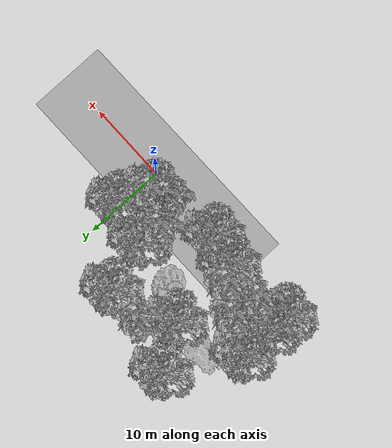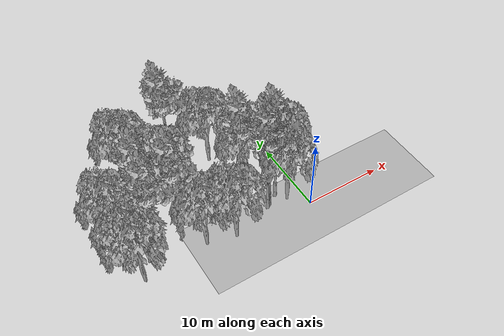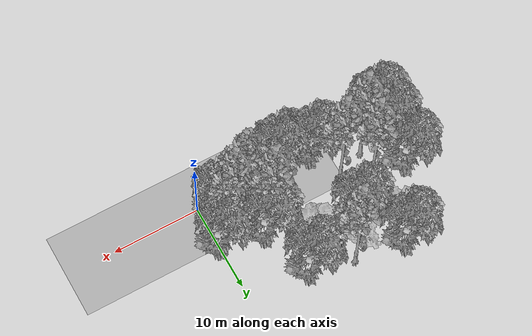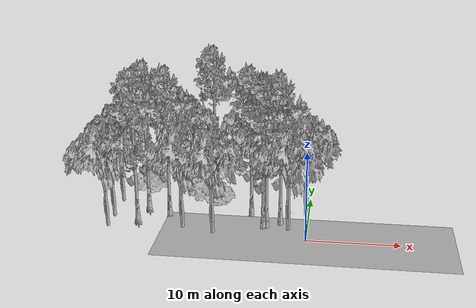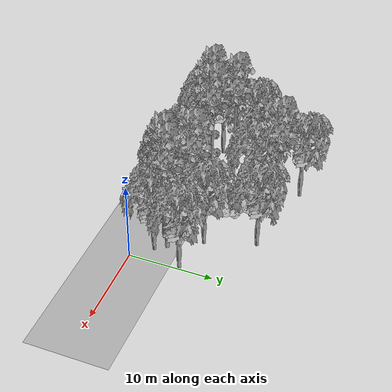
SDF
<sdf version="1.7">
 <world name="default">
  <model name="ground_plane">
   <static>1</static>
   <link name="link">
    <collision name="collision">
     <pose>-50 0 0 0 -0 0</pose>
     <geometry><plane><normal>0 0 1</normal><size>100 100</size></plane></geometry>
     <surface><contact><ode><min_depth>0.01</min_depth><max_vel>0</max_vel></ode></contact></surface>
    </collision>
    <visual name="grass">
     <cast_shadows>0</cast_shadows>
     <geometry>
      <mesh>
       <scale>0.5814285714285714 0.18142857142857144 0.1</scale>
       <uri>file://grass_plane/meshes/grass_plane.dae</uri>
      </mesh>
     </geometry>
    </visual>
   </link>
  </model>
  <model name="Tree 9">
   <static>1</static>
   <pose>-5.143246595416393 7.067504007709154 0 1.57079 -0 0</pose>
   <link name="link">
    <collision name="collision">
     <geometry><mesh><scale>3.5 5 3.5</scale><uri>model://tree_2/meshes/tree_2.obj</uri></mesh></geometry>
    </collision>
    <visual name="visual">
     <geometry><mesh><scale>3.5 5 3.5</scale><uri>model://tree_2/meshes/tree_2.obj</uri></mesh></geometry>
    </visual>
   </link>
  </model>
  <model name="Tree 10">
   <static>1</static>
   <pose>-15.46027357171912 4.023113460201788 0 1.57079 -0 0</pose>
   <link name="link">
    <collision name="collision">
     <geometry><mesh><scale>3.5 5 3.5</scale><uri>model://tree_9/meshes/tree_9.obj</uri></mesh></geometry>
    </collision>
    <visual name="visual">
     <geometry><mesh><scale>3.5 5 3.5</scale><uri>model://tree_9/meshes/tree_9.obj</uri></mesh></geometry>
    </visual>
   </link>
  </model>
  <model name="Tree 12">
   <static>1</static>
   <pose>-14.131242068738842 11.019451765315992 0 1.57079 -0 0</pose>
   <link name="link">
    <collision name="collision">
     <geometry><mesh><scale>4 2.5 4</scale><uri>model://tree_1/meshes/tree_1.obj</uri></mesh></geometry>
    </collision>
    <visual name="visual">
     <geometry><mesh><scale>4 2.5 4</scale><uri>model://tree_1/meshes/tree_1.obj</uri></mesh></geometry>
    </visual>
   </link>
  </model>
  <model name="Tree 23">
   <static>1</static>
   <pose>-2.088435421180897 2.185330463497394 0 1.57079 -0 0</pose>
   <link name="link">
    <collision name="collision">
     <geometry><mesh><scale>3.5 5 3.5</scale><uri>model://tree_2/meshes/tree_2.obj</uri></mesh></geometry>
    </collision>
    <visual name="visual">
     <geometry><mesh><scale>3.5 5 3.5</scale><uri>model://tree_2/meshes/tree_2.obj</uri></mesh></geometry>
    </visual>
   </link>
  </model>
  <model name="Tree 31">
   <static>1</static>
   <pose>-19.215518709218156 9.99422568321122 0 1.57079 -0 0</pose>
   <link name="link">
    <collision name="collision">
     <geometry><mesh><scale>3 2 3</scale><uri>model://tree_3/meshes/tree_3.obj</uri></mesh></geometry>
    </collision>
    <visual name="visual">
     <geometry><mesh><scale>3 2 3</scale><uri>model://tree_3/meshes/tree_3.obj</uri></mesh></geometry>
    </visual>
   </link>
  </model>
  <model name="Tree 48">
   <static>1</static>
   <pose>-2.9748167784761534 3.4079729483396974 0 1.57079 -0 0</pose>
   <link name="link">
    <collision name="collision">
     <geometry><mesh><scale>3.5 5 3.5</scale><uri>model://tree_9/meshes/tree_9.obj</uri></mesh></geometry>
    </collision>
    <visual name="visual">
     <geometry><mesh><scale>3.5 5 3.5</scale><uri>model://tree_9/meshes/tree_9.obj</uri></mesh></geometry>
    </visual>
   </link>
  </model>
  <model name="Tree 50">
   <static>1</static>
   <pose>-21.821226923713294 7.16896674432806 0 1.57079 -0 0</pose>
   <link name="link">
    <collision name="collision">
     <geometry><mesh><scale>3.5 5 3.5</scale><uri>model://tree_2/meshes/tree_2.obj</uri></mesh></geometry>
    </collision>
    <visual name="visual">
     <geometry><mesh><scale>3.5 5 3.5</scale><uri>model://tree_2/meshes/tree_2.obj</uri></mesh></geometry>
    </visual>
   </link>
  </model>
  <model name="Tree 54">
   <static>1</static>
   <pose>-18.30785985367051 5.831797996937862 0 1.57079 -0 0</pose>
   <link name="link">
    <collision name="collision">
     <geometry><mesh><scale>3.5 5 3.5</scale><uri>model://tree_9/meshes/tree_9.obj</uri></mesh></geometry>
    </collision>
    <visual name="visual">
     <geometry><mesh><scale>3.5 5 3.5</scale><uri>model://tree_9/meshes/tree_9.obj</uri></mesh></geometry>
    </visual>
   </link>
  </model>
  <model name="Tree 55">
   <static>1</static>
   <pose>-10.115335346622025 0.6797489572190187 0 1.57079 -0 0</pose>
   <link name="link">
    <collision name="collision">
     <geometry><mesh><scale>3.5 5 3.5</scale><uri>model://tree_2/meshes/tree_2.obj</uri></mesh></geometry>
    </collision>
    <visual name="visual">
     <geometry><mesh><scale>3.5 5 3.5</scale><uri>model://tree_2/meshes/tree_2.obj</uri></mesh></geometry>
    </visual>
   </link>
  </model>
  <model name="Tree 61">
   <static>1</static>
   <pose>-18.78324429591113 2.6452411074708664 0 1.57079 -0 0</pose>
   <link name="link">
    <collision name="collision">
     <geometry><mesh><scale>3.5 5 3.5</scale><uri>model://tree_9/meshes/tree_9.obj</uri></mesh></geometry>
    </collision>
    <visual name="visual">
     <geometry><mesh><scale>3.5 5 3.5</scale><uri>model://tree_9/meshes/tree_9.obj</uri></mesh></geometry>
    </visual>
   </link>
  </model>
  <model name="Tree 74">
   <static>1</static>
   <pose>-11.77840353780006 7.982875021702593 0 1.57079 -0 0</pose>
   <link name="link">
    <collision name="collision">
     <geometry><mesh><scale>3 2 3</scale><uri>model://tree_3/meshes/tree_3.obj</uri></mesh></geometry>
    </collision>
    <visual name="visual">
     <geometry><mesh><scale>3 2 3</scale><uri>model://tree_3/meshes/tree_3.obj</uri></mesh></geometry>
    </visual>
   </link>
  </model>
  <model name="Tree 75">
   <static>1</static>
   <pose>-21.71744420737747 3.268879900940238 0 1.57079 -0 0</pose>
   <link name="link">
    <collision name="collision">
     <geometry><mesh><scale>3.5 5 3.5</scale><uri>model://tree_2/meshes/tree_2.obj</uri></mesh></geometry>
    </collision>
    <visual name="visual">
     <geometry><mesh><scale>3.5 5 3.5</scale><uri>model://tree_2/meshes/tree_2.obj</uri></mesh></geometry>
    </visual>
   </link>
  </model>
  <model name="Tree 78">
   <static>1</static>
   <pose>-4.7421210719146245 2.2760373377823804 0 1.57079 -0 0</pose>
   <link name="link">
    <collision name="collision">
     <geometry><mesh><scale>3.5 5 3.5</scale><uri>model://tree_9/meshes/tree_9.obj</uri></mesh></geometry>
    </collision>
    <visual name="visual">
     <geometry><mesh><scale>3.5 5 3.5</scale><uri>model://tree_9/meshes/tree_9.obj</uri></mesh></geometry>
    </visual>
   </link>
  </model>
  <model name="Tree 80">
   <static>1</static>
   <pose>-13.595956363954969 1.55629923744862 0 1.57079 -0 0</pose>
   <link name="link">
    <collision name="collision">
     <geometry><mesh><scale>3.5 5 3.5</scale><uri>model://tree_2/meshes/tree_2.obj</uri></mesh></geometry>
    </collision>
    <visual name="visual">
     <geometry><mesh><scale>3.5 5 3.5</scale><uri>model://tree_2/meshes/tree_2.obj</uri></mesh></geometry>
    </visual>
   </link>
  </model>
  <model name="Tree 95">
   <static>1</static>
   <pose>-7.061503203735583 12.80749509954357 0 1.57079 -0 0</pose>
   <link name="link">
    <collision name="collision">
     <geometry><mesh><scale>3.5 5 3.5</scale><uri>model://tree_2/meshes/tree_2.obj</uri></mesh></geometry>
    </collision>
    <visual name="visual">
     <geometry><mesh><scale>3.5 5 3.5</scale><uri>model://tree_2/meshes/tree_2.obj</uri></mesh></geometry>
    </visual>
   </link>
  </model>
  <model name="Tree 103">
   <static>1</static>
   <pose>-6.384611293899532 5.269090776431952 0 1.57079 -0 0</pose>
   <link name="link">
    <collision name="collision">
     <geometry><mesh><scale>3.5 5 3.5</scale><uri>model://tree_9/meshes/tree_9.obj</uri></mesh></geometry>
    </collision>
    <visual name="visual">
     <geometry><mesh><scale>3.5 5 3.5</scale><uri>model://tree_9/meshes/tree_9.obj</uri></mesh></geometry>
    </visual>
   </link>
  </model>
  <model name="Tree 104">
   <static>1</static>
   <pose>-21.762864801579703 0.9053066287096101 0 1.57079 -0 0</pose>
   <link name="link">
    <collision name="collision">
     <geometry><mesh><scale>3.5 5 3.5</scale><uri>model://tree_2/meshes/tree_2.obj</uri></mesh></geometry>
    </collision>
    <visual name="visual">
     <geometry><mesh><scale>3.5 5 3.5</scale><uri>model://tree_2/meshes/tree_2.obj</uri></mesh></geometry>
    </visual>
   </link>
  </model>
  <model name="Tree 105">
   <static>1</static>
   <pose>-14.259181660217621 10.020996413009154 0 1.57079 -0 0</pose>
   <link name="link">
    <collision name="collision">
     <geometry><mesh><scale>3.5 5 3.5</scale><uri>model://tree_2/meshes/tree_2.obj</uri></mesh></geometry>
    </collision>
    <visual name="visual">
     <geometry><mesh><scale>3.5 5 3.5</scale><uri>model://tree_2/meshes/tree_2.obj</uri></mesh></geometry>
    </visual>
   </link>
  </model>
  <model name="Tree 128">
   <static>1</static>
   <pose>-17.232470501676687 14.830186635139327 0 1.57079 -0 0</pose>
   <link name="link">
    <collision name="collision">
     <geometry><mesh><scale>3.5 5 3.5</scale><uri>model://tree_2/meshes/tree_2.obj</uri></mesh></geometry>
    </collision>
    <visual name="visual">
     <geometry><mesh><scale>3.5 5 3.5</scale><uri>model://tree_2/meshes/tree_2.obj</uri></mesh></geometry>
    </visual>
   </link>
  </model>
  <model name="Tree 135">
   <static>1</static>
   <pose>-10.576448192593674 7.65397642112967 0 1.57079 -0 0</pose>
   <link name="link">
    <collision name="collision">
     <geometry><mesh><scale>4 2.5 4</scale><uri>model://tree_1/meshes/tree_1.obj</uri></mesh></geometry>
    </collision>
    <visual name="visual">
     <geometry><mesh><scale>4 2.5 4</scale><uri>model://tree_1/meshes/tree_1.obj</uri></mesh></geometry>
    </visual>
   </link>
  </model>
  <model name="Tree 150">
   <static>1</static>
   <pose>-11.862073788854069 13.303572772991714 0 1.57079 -0 0</pose>
   <link name="link">
    <collision name="collision">
     <geometry><mesh><scale>3.5 5 3.5</scale><uri>model://tree_9/meshes/tree_9.obj</uri></mesh></geometry>
    </collision>
    <visual name="visual">
     <geometry><mesh><scale>3.5 5 3.5</scale><uri>model://tree_9/meshes/tree_9.obj</uri></mesh></geometry>
    </visual>
   </link>
  </model>
  <model name="Tree 157">
   <static>1</static>
   <pose>-0.3933818354336083 5.950817330119836 0 1.57079 -0 0</pose>
   <link name="link">
    <collision name="collision">
     <geometry><mesh><scale>3.5 5 3.5</scale><uri>model://tree_2/meshes/tree_2.obj</uri></mesh></geometry>
    </collision>
    <visual name="visual">
     <geometry><mesh><scale>3.5 5 3.5</scale><uri>model://tree_2/meshes/tree_2.obj</uri></mesh></geometry>
    </visual>
   </link>
  </model>
  <model name="Tree 165">
   <static>1</static>
   <pose>-4.397275362734213 2.495006176137643 0 1.57079 -0 0</pose>
   <link name="link">
    <collision name="collision">
     <geometry><mesh><scale>3.5 5 3.5</scale><uri>model://tree_9/meshes/tree_9.obj</uri></mesh></geometry>
    </collision>
    <visual name="visual">
     <geometry><mesh><scale>3.5 5 3.5</scale><uri>model://tree_9/meshes/tree_9.obj</uri></mesh></geometry>
    </visual>
   </link>
  </model>
 </world>
</sdf>
